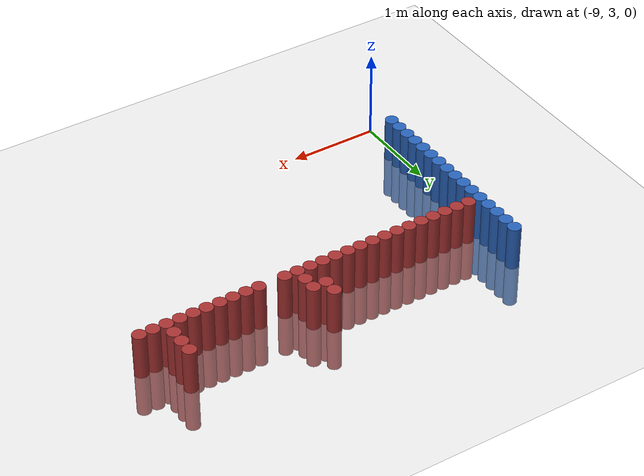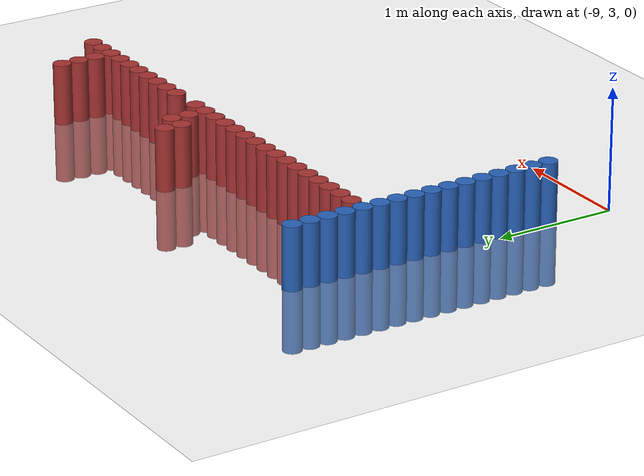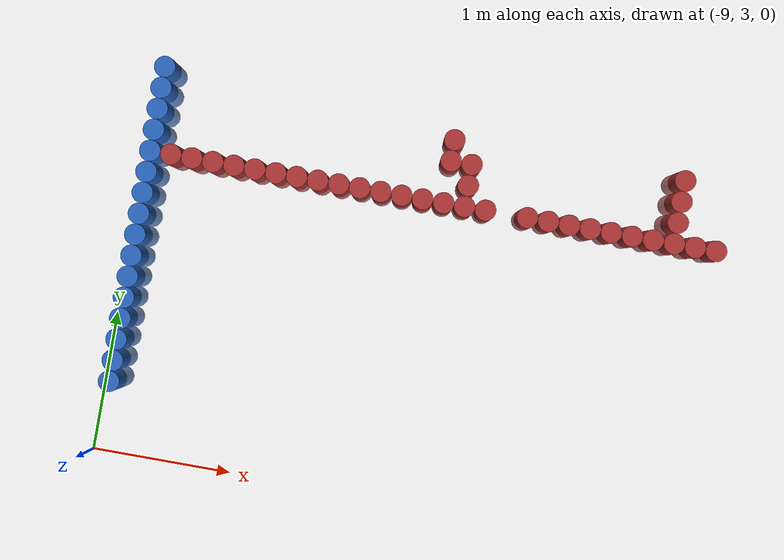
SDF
<sdf version="1.6">
 <world name="default">
  <model name="ground_plane">
   <static>1</static>
   <link name="link">
    <collision name="collision">
     <geometry><plane><normal>0 0 1</normal><size>100 100</size></plane></geometry>
     <surface><friction><ode><mu>100</mu><mu2>50</mu2></ode></friction></surface>
    </collision>
    <visual name="visual">
     <cast_shadows>0</cast_shadows>
     <geometry><plane><normal>0 0 1</normal><size>100 100</size></plane></geometry>
     <material>
      <script><uri>file://media/materials/scripts/gazebo.material</uri><name>Gazebo/Grey</name></script>
     </material>
    </visual>
   </link>
  </model>
  <model name="unit_cylinder_104">
   <static>1</static>
   <pose>-8.925000 3.525000 0.000000 0.000000 0.000000 0.000000</pose>
   <link name="link">
    <inertial>
     <mass>1</mass>
     <inertia><ixx>0.145833</ixx><ixy>0</ixy><ixz>0</ixz><iyy>0.145833</iyy><iyz>0</iyz><izz>0.125</izz></inertia>
    </inertial>
    <collision name="collision">
     <geometry><cylinder><radius>0.075000</radius><length>1</length></cylinder></geometry>
    </collision>
    <visual name="visual">
     <geometry><cylinder><radius>0.075000</radius><length>1</length></cylinder></geometry>
     <material>
      <ambient>0.152000 0.379000 0.720000 1</ambient>
      <diffuse>0.152000 0.379000 0.720000 1</diffuse>
     </material>
     <material>
      <script><name>Gazebo/Grey</name><uri>file://media/materials/scripts/gazebo.material</uri></script>
     </material>
    </visual>
   </link>
  </model>
  <model name="unit_cylinder_106">
   <static>1</static>
   <pose>-8.925000 3.675000 0.000000 0.000000 0.000000 0.000000</pose>
   <link name="link">
    <inertial>
     <mass>1</mass>
     <inertia><ixx>0.145833</ixx><ixy>0</ixy><ixz>0</ixz><iyy>0.145833</iyy><iyz>0</iyz><izz>0.125</izz></inertia>
    </inertial>
    <collision name="collision">
     <geometry><cylinder><radius>0.075000</radius><length>1</length></cylinder></geometry>
    </collision>
    <visual name="visual">
     <geometry><cylinder><radius>0.075000</radius><length>1</length></cylinder></geometry>
     <material>
      <ambient>0.152000 0.379000 0.720000 1</ambient>
      <diffuse>0.152000 0.379000 0.720000 1</diffuse>
     </material>
     <material>
      <script><name>Gazebo/Grey</name><uri>file://media/materials/scripts/gazebo.material</uri></script>
     </material>
    </visual>
   </link>
  </model>
  <model name="unit_cylinder_108">
   <static>1</static>
   <pose>-8.925000 3.825000 0.000000 0.000000 0.000000 0.000000</pose>
   <link name="link">
    <inertial>
     <mass>1</mass>
     <inertia><ixx>0.145833</ixx><ixy>0</ixy><ixz>0</ixz><iyy>0.145833</iyy><iyz>0</iyz><izz>0.125</izz></inertia>
    </inertial>
    <collision name="collision">
     <geometry><cylinder><radius>0.075000</radius><length>1</length></cylinder></geometry>
    </collision>
    <visual name="visual">
     <geometry><cylinder><radius>0.075000</radius><length>1</length></cylinder></geometry>
     <material>
      <ambient>0.152000 0.379000 0.720000 1</ambient>
      <diffuse>0.152000 0.379000 0.720000 1</diffuse>
     </material>
     <material>
      <script><name>Gazebo/Grey</name><uri>file://media/materials/scripts/gazebo.material</uri></script>
     </material>
    </visual>
   </link>
  </model>
  <model name="unit_cylinder_110">
   <static>1</static>
   <pose>-8.925000 3.975000 0.000000 0.000000 0.000000 0.000000</pose>
   <link name="link">
    <inertial>
     <mass>1</mass>
     <inertia><ixx>0.145833</ixx><ixy>0</ixy><ixz>0</ixz><iyy>0.145833</iyy><iyz>0</iyz><izz>0.125</izz></inertia>
    </inertial>
    <collision name="collision">
     <geometry><cylinder><radius>0.075000</radius><length>1</length></cylinder></geometry>
    </collision>
    <visual name="visual">
     <geometry><cylinder><radius>0.075000</radius><length>1</length></cylinder></geometry>
     <material>
      <ambient>0.152000 0.379000 0.720000 1</ambient>
      <diffuse>0.152000 0.379000 0.720000 1</diffuse>
     </material>
     <material>
      <script><name>Gazebo/Grey</name><uri>file://media/materials/scripts/gazebo.material</uri></script>
     </material>
    </visual>
   </link>
  </model>
  <model name="unit_cylinder_112">
   <static>1</static>
   <pose>-8.925000 4.125000 0.000000 0.000000 0.000000 0.000000</pose>
   <link name="link">
    <inertial>
     <mass>1</mass>
     <inertia><ixx>0.145833</ixx><ixy>0</ixy><ixz>0</ixz><iyy>0.145833</iyy><iyz>0</iyz><izz>0.125</izz></inertia>
    </inertial>
    <collision name="collision">
     <geometry><cylinder><radius>0.075000</radius><length>1</length></cylinder></geometry>
    </collision>
    <visual name="visual">
     <geometry><cylinder><radius>0.075000</radius><length>1</length></cylinder></geometry>
     <material>
      <ambient>0.152000 0.379000 0.720000 1</ambient>
      <diffuse>0.152000 0.379000 0.720000 1</diffuse>
     </material>
     <material>
      <script><name>Gazebo/Grey</name><uri>file://media/materials/scripts/gazebo.material</uri></script>
     </material>
    </visual>
   </link>
  </model>
  <model name="unit_cylinder_114">
   <static>1</static>
   <pose>-8.925000 4.275000 0.000000 0.000000 0.000000 0.000000</pose>
   <link name="link">
    <inertial>
     <mass>1</mass>
     <inertia><ixx>0.145833</ixx><ixy>0</ixy><ixz>0</ixz><iyy>0.145833</iyy><iyz>0</iyz><izz>0.125</izz></inertia>
    </inertial>
    <collision name="collision">
     <geometry><cylinder><radius>0.075000</radius><length>1</length></cylinder></geometry>
    </collision>
    <visual name="visual">
     <geometry><cylinder><radius>0.075000</radius><length>1</length></cylinder></geometry>
     <material>
      <ambient>0.152000 0.379000 0.720000 1</ambient>
      <diffuse>0.152000 0.379000 0.720000 1</diffuse>
     </material>
     <material>
      <script><name>Gazebo/Grey</name><uri>file://media/materials/scripts/gazebo.material</uri></script>
     </material>
    </visual>
   </link>
  </model>
  <model name="unit_cylinder_116">
   <static>1</static>
   <pose>-8.925000 4.425000 0.000000 0.000000 0.000000 0.000000</pose>
   <link name="link">
    <inertial>
     <mass>1</mass>
     <inertia><ixx>0.145833</ixx><ixy>0</ixy><ixz>0</ixz><iyy>0.145833</iyy><iyz>0</iyz><izz>0.125</izz></inertia>
    </inertial>
    <collision name="collision">
     <geometry><cylinder><radius>0.075000</radius><length>1</length></cylinder></geometry>
    </collision>
    <visual name="visual">
     <geometry><cylinder><radius>0.075000</radius><length>1</length></cylinder></geometry>
     <material>
      <ambient>0.152000 0.379000 0.720000 1</ambient>
      <diffuse>0.152000 0.379000 0.720000 1</diffuse>
     </material>
     <material>
      <script><name>Gazebo/Grey</name><uri>file://media/materials/scripts/gazebo.material</uri></script>
     </material>
    </visual>
   </link>
  </model>
  <model name="unit_cylinder_118">
   <static>1</static>
   <pose>-8.925000 4.575000 0.000000 0.000000 0.000000 0.000000</pose>
   <link name="link">
    <inertial>
     <mass>1</mass>
     <inertia><ixx>0.145833</ixx><ixy>0</ixy><ixz>0</ixz><iyy>0.145833</iyy><iyz>0</iyz><izz>0.125</izz></inertia>
    </inertial>
    <collision name="collision">
     <geometry><cylinder><radius>0.075000</radius><length>1</length></cylinder></geometry>
    </collision>
    <visual name="visual">
     <geometry><cylinder><radius>0.075000</radius><length>1</length></cylinder></geometry>
     <material>
      <ambient>0.152000 0.379000 0.720000 1</ambient>
      <diffuse>0.152000 0.379000 0.720000 1</diffuse>
     </material>
     <material>
      <script><name>Gazebo/Grey</name><uri>file://media/materials/scripts/gazebo.material</uri></script>
     </material>
    </visual>
   </link>
  </model>
  <model name="unit_cylinder_120">
   <static>1</static>
   <pose>-8.925000 4.725000 0.000000 0.000000 0.000000 0.000000</pose>
   <link name="link">
    <inertial>
     <mass>1</mass>
     <inertia><ixx>0.145833</ixx><ixy>0</ixy><ixz>0</ixz><iyy>0.145833</iyy><iyz>0</iyz><izz>0.125</izz></inertia>
    </inertial>
    <collision name="collision">
     <geometry><cylinder><radius>0.075000</radius><length>1</length></cylinder></geometry>
    </collision>
    <visual name="visual">
     <geometry><cylinder><radius>0.075000</radius><length>1</length></cylinder></geometry>
     <material>
      <ambient>0.152000 0.379000 0.720000 1</ambient>
      <diffuse>0.152000 0.379000 0.720000 1</diffuse>
     </material>
     <material>
      <script><name>Gazebo/Grey</name><uri>file://media/materials/scripts/gazebo.material</uri></script>
     </material>
    </visual>
   </link>
  </model>
  <model name="unit_cylinder_122">
   <static>1</static>
   <pose>-8.925000 4.875000 0.000000 0.000000 0.000000 0.000000</pose>
   <link name="link">
    <inertial>
     <mass>1</mass>
     <inertia><ixx>0.145833</ixx><ixy>0</ixy><ixz>0</ixz><iyy>0.145833</iyy><iyz>0</iyz><izz>0.125</izz></inertia>
    </inertial>
    <collision name="collision">
     <geometry><cylinder><radius>0.075000</radius><length>1</length></cylinder></geometry>
    </collision>
    <visual name="visual">
     <geometry><cylinder><radius>0.075000</radius><length>1</length></cylinder></geometry>
     <material>
      <ambient>0.152000 0.379000 0.720000 1</ambient>
      <diffuse>0.152000 0.379000 0.720000 1</diffuse>
     </material>
     <material>
      <script><name>Gazebo/Grey</name><uri>file://media/materials/scripts/gazebo.material</uri></script>
     </material>
    </visual>
   </link>
  </model>
  <model name="unit_cylinder_124">
   <static>1</static>
   <pose>-8.925000 5.025000 0.000000 0.000000 0.000000 0.000000</pose>
   <link name="link">
    <inertial>
     <mass>1</mass>
     <inertia><ixx>0.145833</ixx><ixy>0</ixy><ixz>0</ixz><iyy>0.145833</iyy><iyz>0</iyz><izz>0.125</izz></inertia>
    </inertial>
    <collision name="collision">
     <geometry><cylinder><radius>0.075000</radius><length>1</length></cylinder></geometry>
    </collision>
    <visual name="visual">
     <geometry><cylinder><radius>0.075000</radius><length>1</length></cylinder></geometry>
     <material>
      <ambient>0.152000 0.379000 0.720000 1</ambient>
      <diffuse>0.152000 0.379000 0.720000 1</diffuse>
     </material>
     <material>
      <script><name>Gazebo/Grey</name><uri>file://media/materials/scripts/gazebo.material</uri></script>
     </material>
    </visual>
   </link>
  </model>
  <model name="unit_cylinder_125">
   <static>1</static>
   <pose>-8.925000 5.175000 0.000000 0.000000 0.000000 0.000000</pose>
   <link name="link">
    <inertial>
     <mass>1</mass>
     <inertia><ixx>0.145833</ixx><ixy>0</ixy><ixz>0</ixz><iyy>0.145833</iyy><iyz>0</iyz><izz>0.125</izz></inertia>
    </inertial>
    <collision name="collision">
     <geometry><cylinder><radius>0.075000</radius><length>1</length></cylinder></geometry>
    </collision>
    <visual name="visual">
     <geometry><cylinder><radius>0.075000</radius><length>1</length></cylinder></geometry>
     <material>
      <ambient>0.152000 0.379000 0.720000 1</ambient>
      <diffuse>0.152000 0.379000 0.720000 1</diffuse>
     </material>
     <material>
      <script><name>Gazebo/Grey</name><uri>file://media/materials/scripts/gazebo.material</uri></script>
     </material>
    </visual>
   </link>
  </model>
  <model name="unit_cylinder_126">
   <static>1</static>
   <pose>-8.925000 5.325000 0.000000 0.000000 0.000000 0.000000</pose>
   <link name="link">
    <inertial>
     <mass>1</mass>
     <inertia><ixx>0.145833</ixx><ixy>0</ixy><ixz>0</ixz><iyy>0.145833</iyy><iyz>0</iyz><izz>0.125</izz></inertia>
    </inertial>
    <collision name="collision">
     <geometry><cylinder><radius>0.075000</radius><length>1</length></cylinder></geometry>
    </collision>
    <visual name="visual">
     <geometry><cylinder><radius>0.075000</radius><length>1</length></cylinder></geometry>
     <material>
      <ambient>0.152000 0.379000 0.720000 1</ambient>
      <diffuse>0.152000 0.379000 0.720000 1</diffuse>
     </material>
     <material>
      <script><name>Gazebo/Grey</name><uri>file://media/materials/scripts/gazebo.material</uri></script>
     </material>
    </visual>
   </link>
  </model>
  <model name="unit_cylinder_127">
   <static>1</static>
   <pose>-8.925000 5.475000 0.000000 0.000000 0.000000 0.000000</pose>
   <link name="link">
    <inertial>
     <mass>1</mass>
     <inertia><ixx>0.145833</ixx><ixy>0</ixy><ixz>0</ixz><iyy>0.145833</iyy><iyz>0</iyz><izz>0.125</izz></inertia>
    </inertial>
    <collision name="collision">
     <geometry><cylinder><radius>0.075000</radius><length>1</length></cylinder></geometry>
    </collision>
    <visual name="visual">
     <geometry><cylinder><radius>0.075000</radius><length>1</length></cylinder></geometry>
     <material>
      <ambient>0.152000 0.379000 0.720000 1</ambient>
      <diffuse>0.152000 0.379000 0.720000 1</diffuse>
     </material>
     <material>
      <script><name>Gazebo/Grey</name><uri>file://media/materials/scripts/gazebo.material</uri></script>
     </material>
    </visual>
   </link>
  </model>
  <model name="unit_cylinder_128">
   <static>1</static>
   <pose>-8.925000 5.625000 0.000000 0.000000 0.000000 0.000000</pose>
   <link name="link">
    <inertial>
     <mass>1</mass>
     <inertia><ixx>0.145833</ixx><ixy>0</ixy><ixz>0</ixz><iyy>0.145833</iyy><iyz>0</iyz><izz>0.125</izz></inertia>
    </inertial>
    <collision name="collision">
     <geometry><cylinder><radius>0.075000</radius><length>1</length></cylinder></geometry>
    </collision>
    <visual name="visual">
     <geometry><cylinder><radius>0.075000</radius><length>1</length></cylinder></geometry>
     <material>
      <ambient>0.152000 0.379000 0.720000 1</ambient>
      <diffuse>0.152000 0.379000 0.720000 1</diffuse>
     </material>
     <material>
      <script><name>Gazebo/Grey</name><uri>file://media/materials/scripts/gazebo.material</uri></script>
     </material>
    </visual>
   </link>
  </model>
  <model name="unit_cylinder_129">
   <static>1</static>
   <pose>-8.925000 5.775000 0.000000 0.000000 0.000000 0.000000</pose>
   <link name="link">
    <inertial>
     <mass>1</mass>
     <inertia><ixx>0.145833</ixx><ixy>0</ixy><ixz>0</ixz><iyy>0.145833</iyy><iyz>0</iyz><izz>0.125</izz></inertia>
    </inertial>
    <collision name="collision">
     <geometry><cylinder><radius>0.075000</radius><length>1</length></cylinder></geometry>
    </collision>
    <visual name="visual">
     <geometry><cylinder><radius>0.075000</radius><length>1</length></cylinder></geometry>
     <material>
      <ambient>0.152000 0.379000 0.720000 1</ambient>
      <diffuse>0.152000 0.379000 0.720000 1</diffuse>
     </material>
     <material>
      <script><name>Gazebo/Grey</name><uri>file://media/materials/scripts/gazebo.material</uri></script>
     </material>
    </visual>
   </link>
  </model>
  <model name="unit_cylinder_155">
   <static>1</static>
   <pose>-8.775000 5.175000 0.000000 0.000000 0.000000 0.000000</pose>
   <link name="link">
    <inertial>
     <mass>1</mass>
     <inertia><ixx>0.145833</ixx><ixy>0</ixy><ixz>0</ixz><iyy>0.145833</iyy><iyz>0</iyz><izz>0.125</izz></inertia>
    </inertial>
    <collision name="collision">
     <geometry><cylinder><radius>0.075000</radius><length>1</length></cylinder></geometry>
    </collision>
    <visual name="visual">
     <geometry><cylinder><radius>0.075000</radius><length>1</length></cylinder></geometry>
     <material>
      <ambient>0.648000 0.192000 0.192000 1</ambient>
      <diffuse>0.648000 0.192000 0.192000 1</diffuse>
     </material>
     <material>
      <script><name>Gazebo/Grey</name><uri>file://media/materials/scripts/gazebo.material</uri></script>
     </material>
    </visual>
   </link>
  </model>
  <model name="unit_cylinder_157">
   <static>1</static>
   <pose>-8.625000 5.175000 0.000000 0.000000 0.000000 0.000000</pose>
   <link name="link">
    <inertial>
     <mass>1</mass>
     <inertia><ixx>0.145833</ixx><ixy>0</ixy><ixz>0</ixz><iyy>0.145833</iyy><iyz>0</iyz><izz>0.125</izz></inertia>
    </inertial>
    <collision name="collision">
     <geometry><cylinder><radius>0.075000</radius><length>1</length></cylinder></geometry>
    </collision>
    <visual name="visual">
     <geometry><cylinder><radius>0.075000</radius><length>1</length></cylinder></geometry>
     <material>
      <ambient>0.648000 0.192000 0.192000 1</ambient>
      <diffuse>0.648000 0.192000 0.192000 1</diffuse>
     </material>
     <material>
      <script><name>Gazebo/Grey</name><uri>file://media/materials/scripts/gazebo.material</uri></script>
     </material>
    </visual>
   </link>
  </model>
  <model name="unit_cylinder_159">
   <static>1</static>
   <pose>-8.475000 5.175000 0.000000 0.000000 0.000000 0.000000</pose>
   <link name="link">
    <inertial>
     <mass>1</mass>
     <inertia><ixx>0.145833</ixx><ixy>0</ixy><ixz>0</ixz><iyy>0.145833</iyy><iyz>0</iyz><izz>0.125</izz></inertia>
    </inertial>
    <collision name="collision">
     <geometry><cylinder><radius>0.075000</radius><length>1</length></cylinder></geometry>
    </collision>
    <visual name="visual">
     <geometry><cylinder><radius>0.075000</radius><length>1</length></cylinder></geometry>
     <material>
      <ambient>0.648000 0.192000 0.192000 1</ambient>
      <diffuse>0.648000 0.192000 0.192000 1</diffuse>
     </material>
     <material>
      <script><name>Gazebo/Grey</name><uri>file://media/materials/scripts/gazebo.material</uri></script>
     </material>
    </visual>
   </link>
  </model>
  <model name="unit_cylinder_175">
   <static>1</static>
   <pose>-8.325000 5.175000 0.000000 0.000000 0.000000 0.000000</pose>
   <link name="link">
    <inertial>
     <mass>1</mass>
     <inertia><ixx>0.145833</ixx><ixy>0</ixy><ixz>0</ixz><iyy>0.145833</iyy><iyz>0</iyz><izz>0.125</izz></inertia>
    </inertial>
    <collision name="collision">
     <geometry><cylinder><radius>0.075000</radius><length>1</length></cylinder></geometry>
    </collision>
    <visual name="visual">
     <geometry><cylinder><radius>0.075000</radius><length>1</length></cylinder></geometry>
     <material>
      <ambient>0.648000 0.192000 0.192000 1</ambient>
      <diffuse>0.648000 0.192000 0.192000 1</diffuse>
     </material>
     <material>
      <script><name>Gazebo/Grey</name><uri>file://media/materials/scripts/gazebo.material</uri></script>
     </material>
    </visual>
   </link>
  </model>
  <model name="unit_cylinder_185">
   <static>1</static>
   <pose>-8.175000 5.175000 0.000000 0.000000 0.000000 0.000000</pose>
   <link name="link">
    <inertial>
     <mass>1</mass>
     <inertia><ixx>0.145833</ixx><ixy>0</ixy><ixz>0</ixz><iyy>0.145833</iyy><iyz>0</iyz><izz>0.125</izz></inertia>
    </inertial>
    <collision name="collision">
     <geometry><cylinder><radius>0.075000</radius><length>1</length></cylinder></geometry>
    </collision>
    <visual name="visual">
     <geometry><cylinder><radius>0.075000</radius><length>1</length></cylinder></geometry>
     <material>
      <ambient>0.648000 0.192000 0.192000 1</ambient>
      <diffuse>0.648000 0.192000 0.192000 1</diffuse>
     </material>
     <material>
      <script><name>Gazebo/Grey</name><uri>file://media/materials/scripts/gazebo.material</uri></script>
     </material>
    </visual>
   </link>
  </model>
  <model name="unit_cylinder_187">
   <static>1</static>
   <pose>-8.025000 5.175000 0.000000 0.000000 0.000000 0.000000</pose>
   <link name="link">
    <inertial>
     <mass>1</mass>
     <inertia><ixx>0.145833</ixx><ixy>0</ixy><ixz>0</ixz><iyy>0.145833</iyy><iyz>0</iyz><izz>0.125</izz></inertia>
    </inertial>
    <collision name="collision">
     <geometry><cylinder><radius>0.075000</radius><length>1</length></cylinder></geometry>
    </collision>
    <visual name="visual">
     <geometry><cylinder><radius>0.075000</radius><length>1</length></cylinder></geometry>
     <material>
      <ambient>0.648000 0.192000 0.192000 1</ambient>
      <diffuse>0.648000 0.192000 0.192000 1</diffuse>
     </material>
     <material>
      <script><name>Gazebo/Grey</name><uri>file://media/materials/scripts/gazebo.material</uri></script>
     </material>
    </visual>
   </link>
  </model>
  <model name="unit_cylinder_190">
   <static>1</static>
   <pose>-7.875000 5.175000 0.000000 0.000000 0.000000 0.000000</pose>
   <link name="link">
    <inertial>
     <mass>1</mass>
     <inertia><ixx>0.145833</ixx><ixy>0</ixy><ixz>0</ixz><iyy>0.145833</iyy><iyz>0</iyz><izz>0.125</izz></inertia>
    </inertial>
    <collision name="collision">
     <geometry><cylinder><radius>0.075000</radius><length>1</length></cylinder></geometry>
    </collision>
    <visual name="visual">
     <geometry><cylinder><radius>0.075000</radius><length>1</length></cylinder></geometry>
     <material>
      <ambient>0.648000 0.192000 0.192000 1</ambient>
      <diffuse>0.648000 0.192000 0.192000 1</diffuse>
     </material>
     <material>
      <script><name>Gazebo/Grey</name><uri>file://media/materials/scripts/gazebo.material</uri></script>
     </material>
    </visual>
   </link>
  </model>
  <model name="unit_cylinder_192">
   <static>1</static>
   <pose>-7.725000 5.175000 0.000000 0.000000 0.000000 0.000000</pose>
   <link name="link">
    <inertial>
     <mass>1</mass>
     <inertia><ixx>0.145833</ixx><ixy>0</ixy><ixz>0</ixz><iyy>0.145833</iyy><iyz>0</iyz><izz>0.125</izz></inertia>
    </inertial>
    <collision name="collision">
     <geometry><cylinder><radius>0.075000</radius><length>1</length></cylinder></geometry>
    </collision>
    <visual name="visual">
     <geometry><cylinder><radius>0.075000</radius><length>1</length></cylinder></geometry>
     <material>
      <ambient>0.648000 0.192000 0.192000 1</ambient>
      <diffuse>0.648000 0.192000 0.192000 1</diffuse>
     </material>
     <material>
      <script><name>Gazebo/Grey</name><uri>file://media/materials/scripts/gazebo.material</uri></script>
     </material>
    </visual>
   </link>
  </model>
  <model name="unit_cylinder_196">
   <static>1</static>
   <pose>-7.575000 5.175000 0.000000 0.000000 0.000000 0.000000</pose>
   <link name="link">
    <inertial>
     <mass>1</mass>
     <inertia><ixx>0.145833</ixx><ixy>0</ixy><ixz>0</ixz><iyy>0.145833</iyy><iyz>0</iyz><izz>0.125</izz></inertia>
    </inertial>
    <collision name="collision">
     <geometry><cylinder><radius>0.075000</radius><length>1</length></cylinder></geometry>
    </collision>
    <visual name="visual">
     <geometry><cylinder><radius>0.075000</radius><length>1</length></cylinder></geometry>
     <material>
      <ambient>0.648000 0.192000 0.192000 1</ambient>
      <diffuse>0.648000 0.192000 0.192000 1</diffuse>
     </material>
     <material>
      <script><name>Gazebo/Grey</name><uri>file://media/materials/scripts/gazebo.material</uri></script>
     </material>
    </visual>
   </link>
  </model>
  <model name="unit_cylinder_198">
   <static>1</static>
   <pose>-7.425000 5.175000 0.000000 0.000000 0.000000 0.000000</pose>
   <link name="link">
    <inertial>
     <mass>1</mass>
     <inertia><ixx>0.145833</ixx><ixy>0</ixy><ixz>0</ixz><iyy>0.145833</iyy><iyz>0</iyz><izz>0.125</izz></inertia>
    </inertial>
    <collision name="collision">
     <geometry><cylinder><radius>0.075000</radius><length>1</length></cylinder></geometry>
    </collision>
    <visual name="visual">
     <geometry><cylinder><radius>0.075000</radius><length>1</length></cylinder></geometry>
     <material>
      <ambient>0.648000 0.192000 0.192000 1</ambient>
      <diffuse>0.648000 0.192000 0.192000 1</diffuse>
     </material>
     <material>
      <script><name>Gazebo/Grey</name><uri>file://media/materials/scripts/gazebo.material</uri></script>
     </material>
    </visual>
   </link>
  </model>
  <model name="unit_cylinder_200">
   <static>1</static>
   <pose>-7.275000 5.175000 0.000000 0.000000 0.000000 0.000000</pose>
   <link name="link">
    <inertial>
     <mass>1</mass>
     <inertia><ixx>0.145833</ixx><ixy>0</ixy><ixz>0</ixz><iyy>0.145833</iyy><iyz>0</iyz><izz>0.125</izz></inertia>
    </inertial>
    <collision name="collision">
     <geometry><cylinder><radius>0.075000</radius><length>1</length></cylinder></geometry>
    </collision>
    <visual name="visual">
     <geometry><cylinder><radius>0.075000</radius><length>1</length></cylinder></geometry>
     <material>
      <ambient>0.648000 0.192000 0.192000 1</ambient>
      <diffuse>0.648000 0.192000 0.192000 1</diffuse>
     </material>
     <material>
      <script><name>Gazebo/Grey</name><uri>file://media/materials/scripts/gazebo.material</uri></script>
     </material>
    </visual>
   </link>
  </model>
  <model name="unit_cylinder_202">
   <static>1</static>
   <pose>-7.125000 5.175000 0.000000 0.000000 0.000000 0.000000</pose>
   <link name="link">
    <inertial>
     <mass>1</mass>
     <inertia><ixx>0.145833</ixx><ixy>0</ixy><ixz>0</ixz><iyy>0.145833</iyy><iyz>0</iyz><izz>0.125</izz></inertia>
    </inertial>
    <collision name="collision">
     <geometry><cylinder><radius>0.075000</radius><length>1</length></cylinder></geometry>
    </collision>
    <visual name="visual">
     <geometry><cylinder><radius>0.075000</radius><length>1</length></cylinder></geometry>
     <material>
      <ambient>0.648000 0.192000 0.192000 1</ambient>
      <diffuse>0.648000 0.192000 0.192000 1</diffuse>
     </material>
     <material>
      <script><name>Gazebo/Grey</name><uri>file://media/materials/scripts/gazebo.material</uri></script>
     </material>
    </visual>
   </link>
  </model>
  <model name="unit_cylinder_207">
   <static>1</static>
   <pose>-6.975000 5.175000 0.000000 0.000000 0.000000 0.000000</pose>
   <link name="link">
    <inertial>
     <mass>1</mass>
     <inertia><ixx>0.145833</ixx><ixy>0</ixy><ixz>0</ixz><iyy>0.145833</iyy><iyz>0</iyz><izz>0.125</izz></inertia>
    </inertial>
    <collision name="collision">
     <geometry><cylinder><radius>0.075000</radius><length>1</length></cylinder></geometry>
    </collision>
    <visual name="visual">
     <geometry><cylinder><radius>0.075000</radius><length>1</length></cylinder></geometry>
     <material>
      <ambient>0.648000 0.192000 0.192000 1</ambient>
      <diffuse>0.648000 0.192000 0.192000 1</diffuse>
     </material>
     <material>
      <script><name>Gazebo/Grey</name><uri>file://media/materials/scripts/gazebo.material</uri></script>
     </material>
    </visual>
   </link>
  </model>
  <model name="unit_cylinder_215">
   <static>1</static>
   <pose>-6.825000 5.175000 0.000000 0.000000 0.000000 0.000000</pose>
   <link name="link">
    <inertial>
     <mass>1</mass>
     <inertia><ixx>0.145833</ixx><ixy>0</ixy><ixz>0</ixz><iyy>0.145833</iyy><iyz>0</iyz><izz>0.125</izz></inertia>
    </inertial>
    <collision name="collision">
     <geometry><cylinder><radius>0.075000</radius><length>1</length></cylinder></geometry>
    </collision>
    <visual name="visual">
     <geometry><cylinder><radius>0.075000</radius><length>1</length></cylinder></geometry>
     <material>
      <ambient>0.648000 0.192000 0.192000 1</ambient>
      <diffuse>0.648000 0.192000 0.192000 1</diffuse>
     </material>
     <material>
      <script><name>Gazebo/Grey</name><uri>file://media/materials/scripts/gazebo.material</uri></script>
     </material>
    </visual>
   </link>
  </model>
  <model name="unit_cylinder_216">
   <static>1</static>
   <pose>-6.825000 5.475000 0.000000 0.000000 0.000000 0.000000</pose>
   <link name="link">
    <inertial>
     <mass>1</mass>
     <inertia><ixx>0.145833</ixx><ixy>0</ixy><ixz>0</ixz><iyy>0.145833</iyy><iyz>0</iyz><izz>0.125</izz></inertia>
    </inertial>
    <collision name="collision">
     <geometry><cylinder><radius>0.075000</radius><length>1</length></cylinder></geometry>
    </collision>
    <visual name="visual">
     <geometry><cylinder><radius>0.075000</radius><length>1</length></cylinder></geometry>
     <material>
      <ambient>0.648000 0.192000 0.192000 1</ambient>
      <diffuse>0.648000 0.192000 0.192000 1</diffuse>
     </material>
     <material>
      <script><name>Gazebo/Grey</name><uri>file://media/materials/scripts/gazebo.material</uri></script>
     </material>
    </visual>
   </link>
  </model>
  <model name="unit_cylinder_217">
   <static>1</static>
   <pose>-6.825000 5.625000 0.000000 0.000000 0.000000 0.000000</pose>
   <link name="link">
    <inertial>
     <mass>1</mass>
     <inertia><ixx>0.145833</ixx><ixy>0</ixy><ixz>0</ixz><iyy>0.145833</iyy><iyz>0</iyz><izz>0.125</izz></inertia>
    </inertial>
    <collision name="collision">
     <geometry><cylinder><radius>0.075000</radius><length>1</length></cylinder></geometry>
    </collision>
    <visual name="visual">
     <geometry><cylinder><radius>0.075000</radius><length>1</length></cylinder></geometry>
     <material>
      <ambient>0.648000 0.192000 0.192000 1</ambient>
      <diffuse>0.648000 0.192000 0.192000 1</diffuse>
     </material>
     <material>
      <script><name>Gazebo/Grey</name><uri>file://media/materials/scripts/gazebo.material</uri></script>
     </material>
    </visual>
   </link>
  </model>
  <model name="unit_cylinder_223">
   <static>1</static>
   <pose>-6.675000 5.175000 0.000000 0.000000 0.000000 0.000000</pose>
   <link name="link">
    <inertial>
     <mass>1</mass>
     <inertia><ixx>0.145833</ixx><ixy>0</ixy><ixz>0</ixz><iyy>0.145833</iyy><iyz>0</iyz><izz>0.125</izz></inertia>
    </inertial>
    <collision name="collision">
     <geometry><cylinder><radius>0.075000</radius><length>1</length></cylinder></geometry>
    </collision>
    <visual name="visual">
     <geometry><cylinder><radius>0.075000</radius><length>1</length></cylinder></geometry>
     <material>
      <ambient>0.648000 0.192000 0.192000 1</ambient>
      <diffuse>0.648000 0.192000 0.192000 1</diffuse>
     </material>
     <material>
      <script><name>Gazebo/Grey</name><uri>file://media/materials/scripts/gazebo.material</uri></script>
     </material>
    </visual>
   </link>
  </model>
  <model name="unit_cylinder_224">
   <static>1</static>
   <pose>-6.675000 5.325000 0.000000 0.000000 0.000000 0.000000</pose>
   <link name="link">
    <inertial>
     <mass>1</mass>
     <inertia><ixx>0.145833</ixx><ixy>0</ixy><ixz>0</ixz><iyy>0.145833</iyy><iyz>0</iyz><izz>0.125</izz></inertia>
    </inertial>
    <collision name="collision">
     <geometry><cylinder><radius>0.075000</radius><length>1</length></cylinder></geometry>
    </collision>
    <visual name="visual">
     <geometry><cylinder><radius>0.075000</radius><length>1</length></cylinder></geometry>
     <material>
      <ambient>0.648000 0.192000 0.192000 1</ambient>
      <diffuse>0.648000 0.192000 0.192000 1</diffuse>
     </material>
     <material>
      <script><name>Gazebo/Grey</name><uri>file://media/materials/scripts/gazebo.material</uri></script>
     </material>
    </visual>
   </link>
  </model>
  <model name="unit_cylinder_225">
   <static>1</static>
   <pose>-6.675000 5.475000 0.000000 0.000000 0.000000 0.000000</pose>
   <link name="link">
    <inertial>
     <mass>1</mass>
     <inertia><ixx>0.145833</ixx><ixy>0</ixy><ixz>0</ixz><iyy>0.145833</iyy><iyz>0</iyz><izz>0.125</izz></inertia>
    </inertial>
    <collision name="collision">
     <geometry><cylinder><radius>0.075000</radius><length>1</length></cylinder></geometry>
    </collision>
    <visual name="visual">
     <geometry><cylinder><radius>0.075000</radius><length>1</length></cylinder></geometry>
     <material>
      <ambient>0.648000 0.192000 0.192000 1</ambient>
      <diffuse>0.648000 0.192000 0.192000 1</diffuse>
     </material>
     <material>
      <script><name>Gazebo/Grey</name><uri>file://media/materials/scripts/gazebo.material</uri></script>
     </material>
    </visual>
   </link>
  </model>
  <model name="unit_cylinder_231">
   <static>1</static>
   <pose>-6.525000 5.175000 0.000000 0.000000 0.000000 0.000000</pose>
   <link name="link">
    <inertial>
     <mass>1</mass>
     <inertia><ixx>0.145833</ixx><ixy>0</ixy><ixz>0</ixz><iyy>0.145833</iyy><iyz>0</iyz><izz>0.125</izz></inertia>
    </inertial>
    <collision name="collision">
     <geometry><cylinder><radius>0.075000</radius><length>1</length></cylinder></geometry>
    </collision>
    <visual name="visual">
     <geometry><cylinder><radius>0.075000</radius><length>1</length></cylinder></geometry>
     <material>
      <ambient>0.648000 0.192000 0.192000 1</ambient>
      <diffuse>0.648000 0.192000 0.192000 1</diffuse>
     </material>
     <material>
      <script><name>Gazebo/Grey</name><uri>file://media/materials/scripts/gazebo.material</uri></script>
     </material>
    </visual>
   </link>
  </model>
  <model name="unit_cylinder_244">
   <static>1</static>
   <pose>-6.225000 5.175000 0.000000 0.000000 0.000000 0.000000</pose>
   <link name="link">
    <inertial>
     <mass>1</mass>
     <inertia><ixx>0.145833</ixx><ixy>0</ixy><ixz>0</ixz><iyy>0.145833</iyy><iyz>0</iyz><izz>0.125</izz></inertia>
    </inertial>
    <collision name="collision">
     <geometry><cylinder><radius>0.075000</radius><length>1</length></cylinder></geometry>
    </collision>
    <visual name="visual">
     <geometry><cylinder><radius>0.075000</radius><length>1</length></cylinder></geometry>
     <material>
      <ambient>0.648000 0.192000 0.192000 1</ambient>
      <diffuse>0.648000 0.192000 0.192000 1</diffuse>
     </material>
     <material>
      <script><name>Gazebo/Grey</name><uri>file://media/materials/scripts/gazebo.material</uri></script>
     </material>
    </visual>
   </link>
  </model>
  <model name="unit_cylinder_252">
   <static>1</static>
   <pose>-6.075000 5.175000 0.000000 0.000000 0.000000 0.000000</pose>
   <link name="link">
    <inertial>
     <mass>1</mass>
     <inertia><ixx>0.145833</ixx><ixy>0</ixy><ixz>0</ixz><iyy>0.145833</iyy><iyz>0</iyz><izz>0.125</izz></inertia>
    </inertial>
    <collision name="collision">
     <geometry><cylinder><radius>0.075000</radius><length>1</length></cylinder></geometry>
    </collision>
    <visual name="visual">
     <geometry><cylinder><radius>0.075000</radius><length>1</length></cylinder></geometry>
     <material>
      <ambient>0.648000 0.192000 0.192000 1</ambient>
      <diffuse>0.648000 0.192000 0.192000 1</diffuse>
     </material>
     <material>
      <script><name>Gazebo/Grey</name><uri>file://media/materials/scripts/gazebo.material</uri></script>
     </material>
    </visual>
   </link>
  </model>
  <model name="unit_cylinder_260">
   <static>1</static>
   <pose>-5.925000 5.175000 0.000000 0.000000 0.000000 0.000000</pose>
   <link name="link">
    <inertial>
     <mass>1</mass>
     <inertia><ixx>0.145833</ixx><ixy>0</ixy><ixz>0</ixz><iyy>0.145833</iyy><iyz>0</iyz><izz>0.125</izz></inertia>
    </inertial>
    <collision name="collision">
     <geometry><cylinder><radius>0.075000</radius><length>1</length></cylinder></geometry>
    </collision>
    <visual name="visual">
     <geometry><cylinder><radius>0.075000</radius><length>1</length></cylinder></geometry>
     <material>
      <ambient>0.648000 0.192000 0.192000 1</ambient>
      <diffuse>0.648000 0.192000 0.192000 1</diffuse>
     </material>
     <material>
      <script><name>Gazebo/Grey</name><uri>file://media/materials/scripts/gazebo.material</uri></script>
     </material>
    </visual>
   </link>
  </model>
  <model name="unit_cylinder_263">
   <static>1</static>
   <pose>-5.775000 5.175000 0.000000 0.000000 0.000000 0.000000</pose>
   <link name="link">
    <inertial>
     <mass>1</mass>
     <inertia><ixx>0.145833</ixx><ixy>0</ixy><ixz>0</ixz><iyy>0.145833</iyy><iyz>0</iyz><izz>0.125</izz></inertia>
    </inertial>
    <collision name="collision">
     <geometry><cylinder><radius>0.075000</radius><length>1</length></cylinder></geometry>
    </collision>
    <visual name="visual">
     <geometry><cylinder><radius>0.075000</radius><length>1</length></cylinder></geometry>
     <material>
      <ambient>0.648000 0.192000 0.192000 1</ambient>
      <diffuse>0.648000 0.192000 0.192000 1</diffuse>
     </material>
     <material>
      <script><name>Gazebo/Grey</name><uri>file://media/materials/scripts/gazebo.material</uri></script>
     </material>
    </visual>
   </link>
  </model>
  <model name="unit_cylinder_264">
   <static>1</static>
   <pose>-5.625000 5.175000 0.000000 0.000000 0.000000 0.000000</pose>
   <link name="link">
    <inertial>
     <mass>1</mass>
     <inertia><ixx>0.145833</ixx><ixy>0</ixy><ixz>0</ixz><iyy>0.145833</iyy><iyz>0</iyz><izz>0.125</izz></inertia>
    </inertial>
    <collision name="collision">
     <geometry><cylinder><radius>0.075000</radius><length>1</length></cylinder></geometry>
    </collision>
    <visual name="visual">
     <geometry><cylinder><radius>0.075000</radius><length>1</length></cylinder></geometry>
     <material>
      <ambient>0.648000 0.192000 0.192000 1</ambient>
      <diffuse>0.648000 0.192000 0.192000 1</diffuse>
     </material>
     <material>
      <script><name>Gazebo/Grey</name><uri>file://media/materials/scripts/gazebo.material</uri></script>
     </material>
    </visual>
   </link>
  </model>
  <model name="unit_cylinder_265">
   <static>1</static>
   <pose>-5.475000 5.175000 0.000000 0.000000 0.000000 0.000000</pose>
   <link name="link">
    <inertial>
     <mass>1</mass>
     <inertia><ixx>0.145833</ixx><ixy>0</ixy><ixz>0</ixz><iyy>0.145833</iyy><iyz>0</iyz><izz>0.125</izz></inertia>
    </inertial>
    <collision name="collision">
     <geometry><cylinder><radius>0.075000</radius><length>1</length></cylinder></geometry>
    </collision>
    <visual name="visual">
     <geometry><cylinder><radius>0.075000</radius><length>1</length></cylinder></geometry>
     <material>
      <ambient>0.648000 0.192000 0.192000 1</ambient>
      <diffuse>0.648000 0.192000 0.192000 1</diffuse>
     </material>
     <material>
      <script><name>Gazebo/Grey</name><uri>file://media/materials/scripts/gazebo.material</uri></script>
     </material>
    </visual>
   </link>
  </model>
  <model name="unit_cylinder_266">
   <static>1</static>
   <pose>-5.325000 5.175000 0.000000 0.000000 0.000000 0.000000</pose>
   <link name="link">
    <inertial>
     <mass>1</mass>
     <inertia><ixx>0.145833</ixx><ixy>0</ixy><ixz>0</ixz><iyy>0.145833</iyy><iyz>0</iyz><izz>0.125</izz></inertia>
    </inertial>
    <collision name="collision">
     <geometry><cylinder><radius>0.075000</radius><length>1</length></cylinder></geometry>
    </collision>
    <visual name="visual">
     <geometry><cylinder><radius>0.075000</radius><length>1</length></cylinder></geometry>
     <material>
      <ambient>0.648000 0.192000 0.192000 1</ambient>
      <diffuse>0.648000 0.192000 0.192000 1</diffuse>
     </material>
     <material>
      <script><name>Gazebo/Grey</name><uri>file://media/materials/scripts/gazebo.material</uri></script>
     </material>
    </visual>
   </link>
  </model>
  <model name="unit_cylinder_268">
   <static>1</static>
   <pose>-5.175000 5.175000 0.000000 0.000000 0.000000 0.000000</pose>
   <link name="link">
    <inertial>
     <mass>1</mass>
     <inertia><ixx>0.145833</ixx><ixy>0</ixy><ixz>0</ixz><iyy>0.145833</iyy><iyz>0</iyz><izz>0.125</izz></inertia>
    </inertial>
    <collision name="collision">
     <geometry><cylinder><radius>0.075000</radius><length>1</length></cylinder></geometry>
    </collision>
    <visual name="visual">
     <geometry><cylinder><radius>0.075000</radius><length>1</length></cylinder></geometry>
     <material>
      <ambient>0.648000 0.192000 0.192000 1</ambient>
      <diffuse>0.648000 0.192000 0.192000 1</diffuse>
     </material>
     <material>
      <script><name>Gazebo/Grey</name><uri>file://media/materials/scripts/gazebo.material</uri></script>
     </material>
    </visual>
   </link>
  </model>
  <model name="unit_cylinder_269">
   <static>1</static>
   <pose>-5.175000 5.325000 0.000000 0.000000 0.000000 0.000000</pose>
   <link name="link">
    <inertial>
     <mass>1</mass>
     <inertia><ixx>0.145833</ixx><ixy>0</ixy><ixz>0</ixz><iyy>0.145833</iyy><iyz>0</iyz><izz>0.125</izz></inertia>
    </inertial>
    <collision name="collision">
     <geometry><cylinder><radius>0.075000</radius><length>1</length></cylinder></geometry>
    </collision>
    <visual name="visual">
     <geometry><cylinder><radius>0.075000</radius><length>1</length></cylinder></geometry>
     <material>
      <ambient>0.648000 0.192000 0.192000 1</ambient>
      <diffuse>0.648000 0.192000 0.192000 1</diffuse>
     </material>
     <material>
      <script><name>Gazebo/Grey</name><uri>file://media/materials/scripts/gazebo.material</uri></script>
     </material>
    </visual>
   </link>
  </model>
  <model name="unit_cylinder_270">
   <static>1</static>
   <pose>-5.175000 5.475000 0.000000 0.000000 0.000000 0.000000</pose>
   <link name="link">
    <inertial>
     <mass>1</mass>
     <inertia><ixx>0.145833</ixx><ixy>0</ixy><ixz>0</ixz><iyy>0.145833</iyy><iyz>0</iyz><izz>0.125</izz></inertia>
    </inertial>
    <collision name="collision">
     <geometry><cylinder><radius>0.075000</radius><length>1</length></cylinder></geometry>
    </collision>
    <visual name="visual">
     <geometry><cylinder><radius>0.075000</radius><length>1</length></cylinder></geometry>
     <material>
      <ambient>0.648000 0.192000 0.192000 1</ambient>
      <diffuse>0.648000 0.192000 0.192000 1</diffuse>
     </material>
     <material>
      <script><name>Gazebo/Grey</name><uri>file://media/materials/scripts/gazebo.material</uri></script>
     </material>
    </visual>
   </link>
  </model>
  <model name="unit_cylinder_271">
   <static>1</static>
   <pose>-5.175000 5.625000 0.000000 0.000000 0.000000 0.000000</pose>
   <link name="link">
    <inertial>
     <mass>1</mass>
     <inertia><ixx>0.145833</ixx><ixy>0</ixy><ixz>0</ixz><iyy>0.145833</iyy><iyz>0</iyz><izz>0.125</izz></inertia>
    </inertial>
    <collision name="collision">
     <geometry><cylinder><radius>0.075000</radius><length>1</length></cylinder></geometry>
    </collision>
    <visual name="visual">
     <geometry><cylinder><radius>0.075000</radius><length>1</length></cylinder></geometry>
     <material>
      <ambient>0.648000 0.192000 0.192000 1</ambient>
      <diffuse>0.648000 0.192000 0.192000 1</diffuse>
     </material>
     <material>
      <script><name>Gazebo/Grey</name><uri>file://media/materials/scripts/gazebo.material</uri></script>
     </material>
    </visual>
   </link>
  </model>
  <model name="unit_cylinder_273">
   <static>1</static>
   <pose>-5.025000 5.175000 0.000000 0.000000 0.000000 0.000000</pose>
   <link name="link">
    <inertial>
     <mass>1</mass>
     <inertia><ixx>0.145833</ixx><ixy>0</ixy><ixz>0</ixz><iyy>0.145833</iyy><iyz>0</iyz><izz>0.125</izz></inertia>
    </inertial>
    <collision name="collision">
     <geometry><cylinder><radius>0.075000</radius><length>1</length></cylinder></geometry>
    </collision>
    <visual name="visual">
     <geometry><cylinder><radius>0.075000</radius><length>1</length></cylinder></geometry>
     <material>
      <ambient>0.648000 0.192000 0.192000 1</ambient>
      <diffuse>0.648000 0.192000 0.192000 1</diffuse>
     </material>
     <material>
      <script><name>Gazebo/Grey</name><uri>file://media/materials/scripts/gazebo.material</uri></script>
     </material>
    </visual>
   </link>
  </model>
  <model name="unit_cylinder_275">
   <static>1</static>
   <pose>-4.875000 5.175000 0.000000 0.000000 0.000000 0.000000</pose>
   <link name="link">
    <inertial>
     <mass>1</mass>
     <inertia><ixx>0.145833</ixx><ixy>0</ixy><ixz>0</ixz><iyy>0.145833</iyy><iyz>0</iyz><izz>0.125</izz></inertia>
    </inertial>
    <collision name="collision">
     <geometry><cylinder><radius>0.075000</radius><length>1</length></cylinder></geometry>
    </collision>
    <visual name="visual">
     <geometry><cylinder><radius>0.075000</radius><length>1</length></cylinder></geometry>
     <material>
      <ambient>0.648000 0.192000 0.192000 1</ambient>
      <diffuse>0.648000 0.192000 0.192000 1</diffuse>
     </material>
     <material>
      <script><name>Gazebo/Grey</name><uri>file://media/materials/scripts/gazebo.material</uri></script>
     </material>
    </visual>
   </link>
  </model>
 </world>
</sdf>
